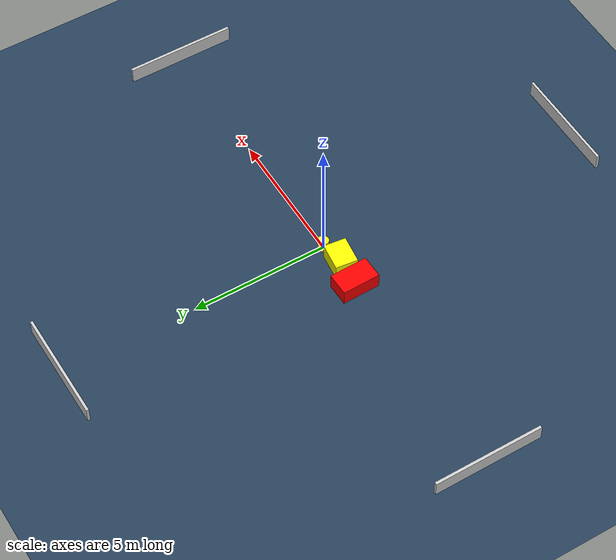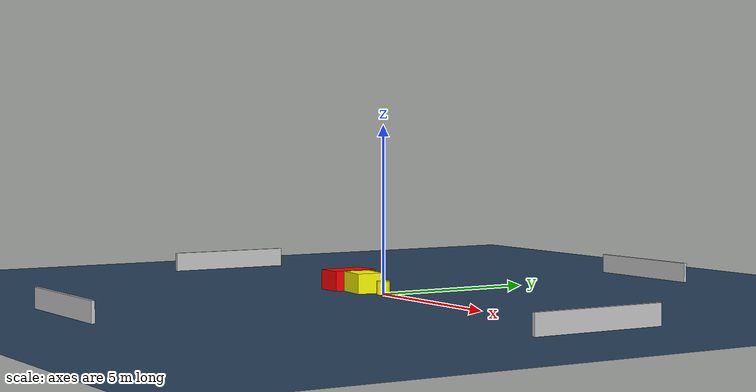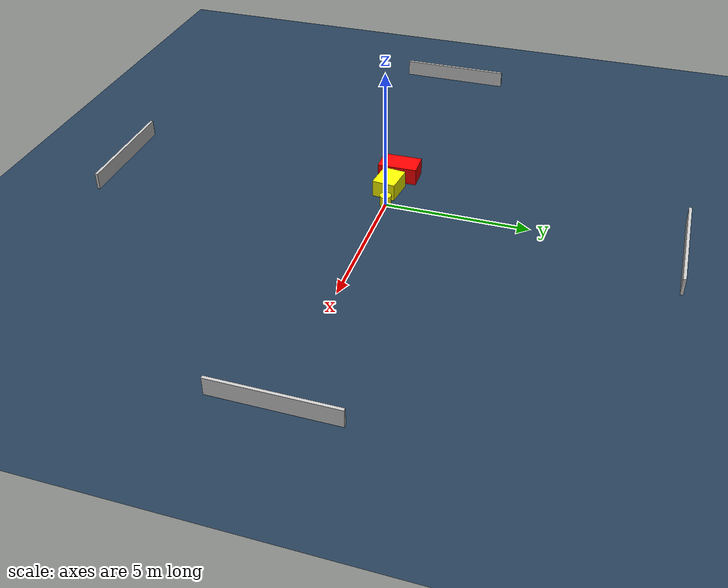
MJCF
<?xml version="1.0" ?>
<mujoco model="generated_environment">
  <option timestep="0.01" integrator="RK4" cone="elliptic"/>
  <default>
    <geom density="1"/>
  </default>
  <asset>
    <texture builtin="gradient" height="3072" name="skybox" rgb1="0.3 0.5 0.7" rgb2="0 0 0" type="skybox" width="512"/>
    <texture builtin="checker" height="300" name="groundplane" rgb1="0.2 0.3 0.4" rgb2="0.1 0.2 0.3" type="2d" width="300"/>
    <material name="groundplane" reflectance="0.2" texrepeat="5 5" texture="groundplane"/>
  </asset>
  <worldbody>
    <light dir="0 0 -1" directional="true" pos="0 0 1.5"/>
    <geom condim="3" friction="0.5 0.005 0.001" material="groundplane" name="floor" pos="0 0 0" size="0 0 0.05" type="plane"/>
    <body name="walls">
      <geom name="wall_1" condim="4" pos="-10.0 0.0 0.3" rgba="0.800000011920929 0.800000011920929 0.800000011920929 1.0" size="0.05 2.0 0.3" type="box"/>
      <geom name="wall_2" condim="4" pos="10.0 0.0 0.3" rgba="0.800000011920929 0.800000011920929 0.800000011920929 1.0" size="0.05 2.0 0.3" type="box"/>
      <geom name="wall_3" condim="4" pos="0.0 -10.0 0.3" rgba="0.800000011920929 0.800000011920929 0.800000011920929 1.0" size="2.0 0.05 0.3" type="box"/>
      <geom name="wall_4" condim="4" pos="0.0 10.0 0.3" rgba="0.800000011920929 0.800000011920929 0.800000011920929 1.0" size="2.0 0.05 0.3" type="box"/>
    </body>
    <body name="robot">
      <joint name="joint_x" type="slide" pos="0 0 0" axis="1 0 0"/>
      <joint name="joint_y" type="slide" pos="0 0 0" axis="0 1 0"/>
      <geom name="robot" type="cylinder" pos="0.0 0.0 0.2" size="0.2 0.2 0.0" mass="5.0" friction="1.0 0.005 0.0001" condim="4" rgba="1.0 1.0 0.0 1.0"/>
    </body>
    <body name="obstacle_1_movable">
      <geom name="obstacle_1_movable" condim="4" pos="-0.8914647968331946 -0.14492919773806895 0.3" euler="0 0 172.9700395667119" friction="0.0 0.005 0.001" rgba="1.0 1.0 0.0 1.0" size="0.5052658851514771 0.40659759241277144 0.3" type="box" mass="0.1"/>
      <joint type="free"/>
    </body>
    <body name="obstacle_2_static">
      <geom name="obstacle_2_static" condim="4" pos="-1.932316104437754 -0.06027793546568991 0.3" euler="0 0 1.0994644182126123" friction="0.0 0.005 0.001" rgba="1.0 0.0 0.0 1.0" size="0.41885483060824175 0.6940079912837002 0.3" type="box"/>
    </body>
  </worldbody>
  <actuator>
    <motor name="actuator_x" joint="joint_x" gear="1" ctrlrange="-1 1"/>
    <motor name="actuator_y" joint="joint_y" gear="1" ctrlrange="-1 1"/>
  </actuator>
</mujoco>
